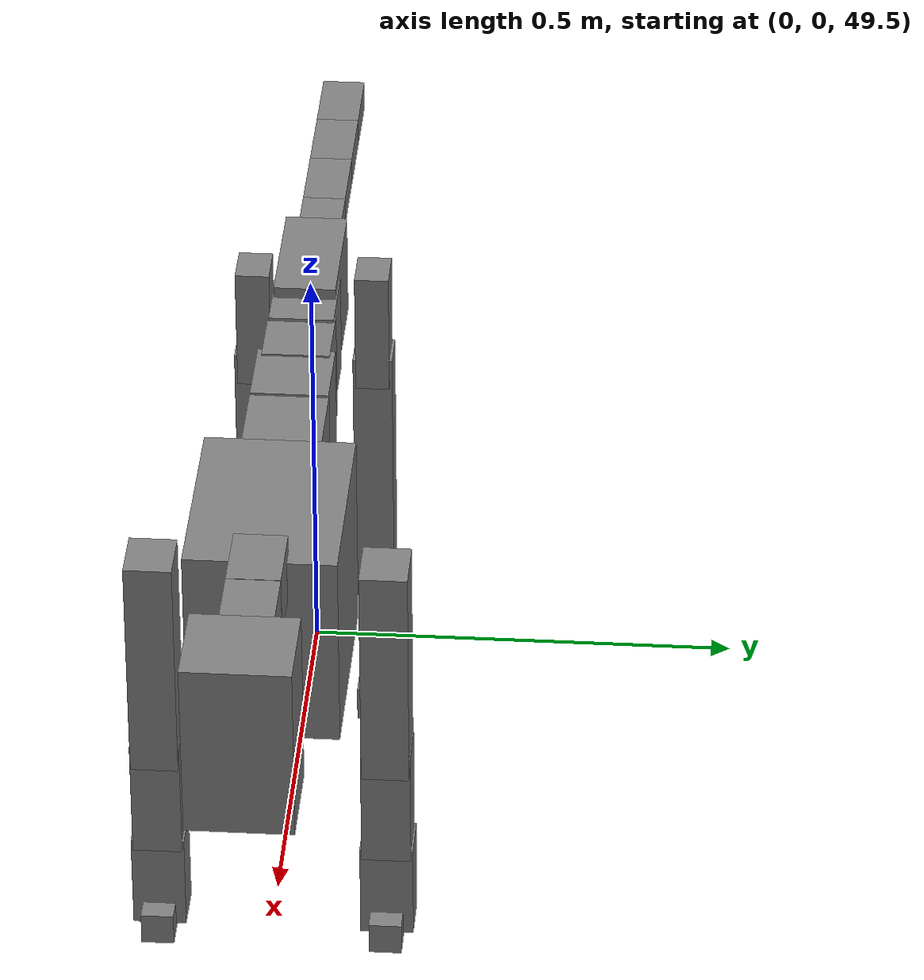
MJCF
<mujoco model="dog">

    <default>
        <joint armature="0.02" stiffness="1" damping="0.2" limited="true"/>
        <geom condim="3" friction="1 0.05 0.05" margin="0.01"/>
        <motor ctrllimited="true" ctrlrange="-1.0 1.0" forcelimited="true" gear="50"/>
    </default>

    <compiler inertiafromgeom="true" angle="radian"/>

    <option timestep="0.016" iterations="50" tolerance="1e-10" solver="Newton" jacobian="dense" cone="pyramidal"/>

    <size nconmax="20000" njmax="60000" nstack="5000000"/>
    <visual>
        <map force="0.1" zfar="30"/>
        <rgba haze="0.15 0.25 0.35 1"/>
        <quality shadowsize="2048"/>
        <global offwidth="800" offheight="800"/>
    </visual>

    <asset>
        <texture type="skybox" builtin="gradient" rgb1="0.3 0.5 0.7" rgb2="0 0 0" width="512" height="512"/>
        <texture name="texplane" type="2d" builtin="checker" rgb1=".2 .3 .4" rgb2=".1 0.15 0.2" width="512" height="512"
                 mark="cross" markrgb=".8 .8 .8"/>
        <texture name="texgeom" type="cube" builtin="flat" mark="cross" width="127" height="1278" rgb1="0.8 0.6 0.4"
                 rgb2="0.8 0.6 0.4" markrgb="1 1 1" random="0.01"/>

        <material name="matplane" reflectance="0.3" texture="texplane" texrepeat="1 1" texuniform="true"/>
        <material name="matgeom" texture="texgeom" texuniform="true" rgba="0.8 0.6 .4 1"/>
    </asset>

    <worldbody>
        <geom name="floor" pos="0 0 0" size="0 0 .25" type="plane" material="matplane" condim="3"/>

        <light directional="false" diffuse=".2 .2 .2" specular="0 0 0" pos="0 0 5" dir="0 0 -1" castshadow="false"/>
        <light mode="targetbodycom" target="torso" directional="false" diffuse=".8 .8 .8" specular="0.3 0.3 0.3"
               pos="0 0 4.0" dir="0 0 -1"/>

        <body name="root" pos="0 0 50">
            <freejoint name="root_1"/>
            <geom type="box" pos="0 0 -0.02" size="0.0774  0.0358  0.063" density="2030"/>

            <body name="spine1" pos="0.054 0 0">
                <joint name="spine1_y" axis="0 1 0" range="0 0.7" limited="true"/>
                <geom type="box" pos="0.02375 0 -0.03" size="0.04375  0.0375  0.05985" density="2030"/>

                <body name="spine2" pos="0.0612 0 0">
                    <joint name="spine2_y" axis="0 1 0" range="-0.15 0.15" limited="true"/>
                    <geom type="box" pos="0.03555  0  -0.04" size="0.04055  0.039  0.06615" density="2030"/>

                    <body name="spine3" pos="0.0730 0 0">
                        <joint name="spine3_y" axis="0 1 0" range="-0.15 0.15" limited="true"/>
                        <geom type="box" pos="0.03555  0  -0.057" size="0.04555  0.0445  0.081" density="2030"/>

                        <body name="spine4" pos="0.0780 0 0">
                            <joint name="spine4_y" axis="0 1 0" range="-0.15 0.15" limited="true"/>
                            <geom type="box" pos="0.05265  0  -0.07" size="0.05265  0.045  0.09135" density="2030"/>

                            <body name="torso" pos="0.1082 0 0">
                                <joint name="torso_y" axis="0 1 0" range="-0.15 0.15" limited="true"/>
                                <geom type="box" pos="0.11925  0  -0.085" size="0.11925  0.085  0.11745"
                                      density="2030"/>

                                <body name="neck1" pos="0.2160  0   0.0180">
                                    <joint name="neck1_y" axis="0 1 0" range="-1.2  -1" limited="true"/>
                                    <geom type="box" pos="0.0423  0  0" size="0.0423  0.03  0.036" density="2325"/>

                                    <body name="neck2" pos="0.0853  0  0">
                                        <joint name="neck2_y" axis="0 1 0" range="0.1  0" limited="true"/>
                                        <geom type="box" pos="0.0423  0  0" size="0.0423  0.03  0.036" density="2325"/>

                                        <body name="head" pos="0.0853  0  0">
                                            <joint name="head_y" axis="0 1 0" range="-0.3  -0.2" limited="true"/>
                                            <geom type="box" pos="0.0531  0  -0.055" size="0.0531  0.06  0.1044"
                                                  density="4030"/>

                                        </body>
                                    </body>
                                </body>

                                <body name="front_shoulder" pos="0.156  0   -0.0480">
                                    <joint name="front_shoulder_y" axis="0 1 0" range="-1 1.5" limited="true"/>
                                    <geom type="box" pos="0 0.13 -0.1098" size="0.0315  0.0269  0.1364" density="1158"/>
                                    <geom type="box" pos="0 -0.13 -0.1098" size="0.0315  0.0269  0.1364"
                                          density="1158"/>

                                    <body name="front_elbow" pos="0  0  -0.2195">
                                        <joint name="front_elbow_y" axis="0 1 0" range="-2 0" limited="true"/>
                                        <geom type="box" pos="0 0.13 -0.0719" size="0.0274  0.0280  0.0719"
                                              density="1081"/>
                                        <geom type="box" pos="0 -0.13 -0.0719" size="0.0274  0.0280  0.0719"
                                              density="1081"/>

                                        <body name="front_wrist" pos="0  0  -0.1438">
                                            <joint name="front_wrist_y" axis="0 1 0" range="-0.2 0" limited="true"/>
                                            <geom type="box" pos="0 0.13 -0.0449" size="0.0271  0.0301  0.0580"
                                                  density="1664"/>
                                            <geom type="box" pos="0 -0.13 -0.0449" size="0.0271  0.0301  0.0580"
                                                  density="1664"/>

                                            <body name="front_finger_end" pos="0  0  -0.0897">
                                                <joint name="front_finger_y" axis="0 1 0" range="-0.4 1"
                                                       limited="true"/>
                                                <geom type="box" pos="0.0185  0.13  -0.0041"
                                                      size="0.0338  0.0185  0.0191" density="1515"/>
                                                <geom type="box" pos="0.0185  -0.13  -0.0041"
                                                      size="0.0338  0.0185  0.0191" density="1515"/>

                                            </body>

                                        </body>
                                    </body>
                                </body>

                            </body>
                        </body>
                    </body>
                </body>
            </body>

            <body name="back_hip" pos="-0.03 0 -0.018">
                <joint name="back_hip_y" axis="0 1 0" range="-1.5 0.3" limited="true"/>
                <geom type="box" pos="0 0.07 -0.0527" size="0.0254  0.0199  0.0755" density="1154"/>
                <geom type="box" pos="0 -0.07 -0.0527" size="0.0254  0.0199  0.0755" density="1154"/>

                <body name="back_knee" pos="0  0  -0.1055">
                    <joint name="back_knee_y" axis="0 1 0" range="0 2.8" limited="true"/>
                    <geom type="box" pos="0 0.07 -0.1542" size="0.0236  0.0232  0.1697" density="1227"/>
                    <geom type="box" pos="0 -0.07 -0.1542" size="0.0236  0.0232  0.1697" density="1227"/>

                    <body name="back_ankle" pos="0  0  -0.3084">
                        <joint name="back_ankle_y" axis="0 1 0" range="-2.2 0" limited="true"/>
                        <geom type="box" pos="0 0.07 -0.0739" size="0.0145  0.0145  0.0852" density="1284"/>
                        <geom type="box" pos="0 -0.07 -0.0739" size="0.0145  0.0145  0.0852" density="1284"/>

                        <body name="back_toe_end" pos="0  0  -0.1478">
                            <joint name="back_toe_y" axis="0 1 0" range="-0.4 1" limited="true"/>
                            <geom type="box" pos="0.0200  0.07  -0.0064" size="0.0366  0.0200  0.0214" density="1515"/>
                            <geom type="box" pos="0.0200  -0.07  -0.0064" size="0.0366  0.0200  0.0214" density="1515"/>

                        </body>
                    </body>
                </body>
            </body>

            <body name="tail1" pos="-0.074 0 -0.006">
                <joint name="tail1_y" axis="0 1 0" range="-0.2 0.2" limited="true"/>
                <geom type="box" pos="-0.0536  0  0" size="0.045  0.025  0.0175" density="1587"/>

                <body name="tail2" pos="-0.09 0 0">
                    <joint name="tail2_y" axis="0 1 0" range="-0.2 0.2" limited="true"/>
                    <geom type="box" pos="-0.0536  0  0" size="0.045  0.025  0.0175" density="1587"/>

                    <body name="tail3" pos="-0.09 0 0">
                        <joint name="tail3_y" axis="0 1 0" range="-0.2 0.2" limited="true"/>
                        <geom type="box" pos="-0.0536  0  0" size="0.045  0.025  0.0175" density="1587"/>

                        <body name="tail4" pos="-0.09 0 0">
                            <joint name="tail4_y" axis="0 1 0" range="-0.2 0.2" limited="true"/>
                            <geom type="box" pos="-0.0536  0  0" size="0.045  0.025  0.0175" density="1587"/>

                        </body>
                    </body>
                </body>
            </body>
        </body>
    </worldbody>

    <actuator>
        <motor joint="spine1_y" forcerange="-150 150     "/>
        <motor joint="spine2_y" forcerange="-150 150     "/>
        <motor joint="spine3_y" forcerange="-150 150     "/>
        <motor joint="spine4_y" forcerange="-150 150     "/>
        <motor joint="torso_y" forcerange="-150 150     "/>
        <motor joint="neck1_y" forcerange="-100 100       "/>
        <motor joint="neck2_y" forcerange="-100 100       "/>
        <motor joint="head_y" forcerange="-150 150       "/>
        <motor joint="front_shoulder_y" forcerange="-147.86 131.51"/>
        <motor joint="front_elbow_y" forcerange="-155.03 148.46"/>
        <motor joint="front_wrist_y" forcerange="-100.01 141.08"/>
        <motor joint="front_finger_y" forcerange="-28.86 29.61"/>
        <motor joint="back_hip_y" forcerange="-202.86 263.13"/>
        <motor joint="back_knee_y" forcerange="-265.05 273.01"/>
        <motor joint="back_angle_y" forcerange="-50.56 81.63"/>
        <motor joint="back_toe_y" forcerange="-51.19 28.52"/>
        <motor joint="tail1_y" forcerange="-50 50     "/>
        <motor joint="tail2_y" forcerange="-50 50     "/>
        <motor joint="tail3_y" forcerange="-50 50     "/>
        <motor joint="tail4_y" forcerange="-50 50     "/>
    </actuator>
</mujoco>
